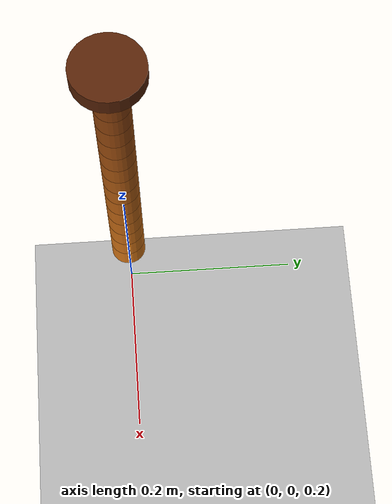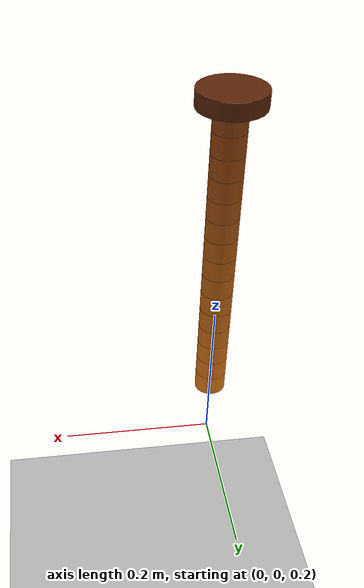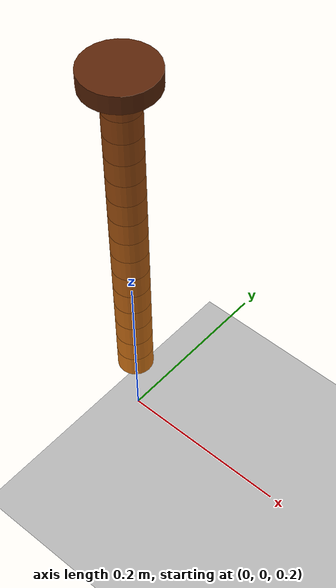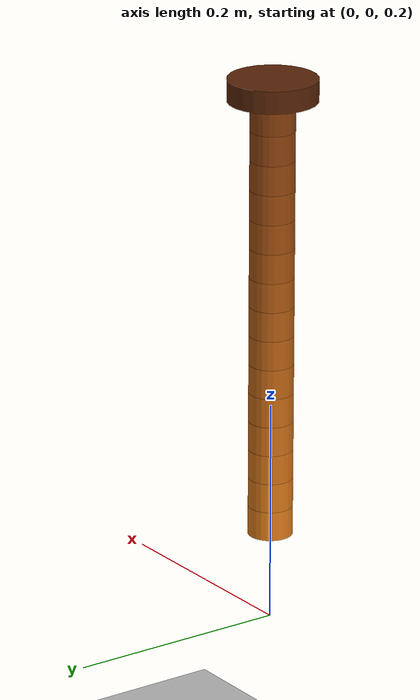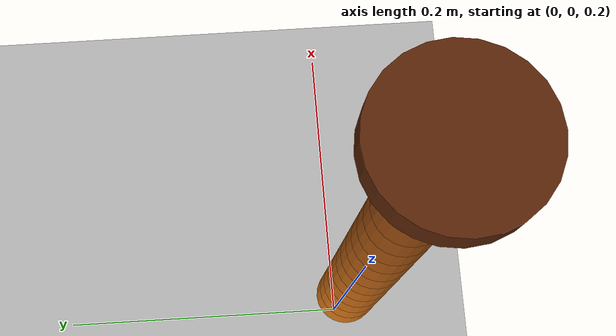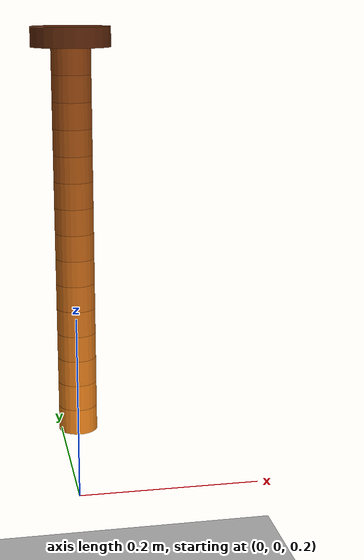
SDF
<?xml version="1.0" encoding="UTF-8"?>
<sdf version="1.9">
  <world name="continuum_arm_cosserat_test">
    <physics type="ode">
      <max_step_size>0.001</max_step_size>
      <real_time_factor>1.0</real_time_factor>
      <real_time_update_rate>1000</real_time_update_rate>
    </physics>
    <plugin name="gz::sim::systems::Physics" filename="gz-sim-physics-system"/>
    <plugin name="gz::sim::systems::UserCommands" filename="gz-sim-user-commands-system"/>
    <plugin name="gz::sim::systems::SceneBroadcaster" filename="gz-sim-scene-broadcaster-system"/>
    <!-- Base-reaction-wrench (Task 3 eval suite) + tip-payload injection -
         see continuum_arm_test.sdf's identical block for the rationale. -->
    <plugin name="gz::sim::systems::ForceTorque" filename="gz-sim-forcetorque-system"/>
    <plugin name="gz::sim::systems::Sensors" filename="gz-sim-sensors-system">
      <render_engine>ogre2</render_engine>
    </plugin>
    <plugin name="gz::sim::systems::ApplyLinkWrench" filename="gz-sim-apply-link-wrench-system"/>
    <plugin filename="gz-sim-pose-publisher-system" name="gz::sim::systems::PosePublisher">
      <publish_link_pose>true</publish_link_pose>
      <publish_model_pose>true</publish_model_pose>
      <use_pose_vector_msg>true</use_pose_vector_msg>
      <static_publisher>false</static_publisher>
      <update_frequency>60</update_frequency>
    </plugin>

    <gravity>0 0 -9.8</gravity>

    <light name="sun" type="directional">
      <pose>0 0 10 0 0 0</pose>
      <direction>0.3 0.3 -0.9</direction>
      <diffuse>0.9 0.9 0.9 1</diffuse>
    </light>

    <model name="ground_plane">
      <static>true</static>
      <link name="link">
        <collision name="collision">
          <geometry><plane><normal>0 0 1</normal><size>10 10</size></plane></geometry>
        </collision>
        <visual name="visual">
          <geometry><plane><normal>0 0 1</normal><size>10 10</size></plane></geometry>
          <material><ambient>0.7 0.7 0.7 1</ambient></material>
        </visual>
      </link>
    </model>

    <model name="continuum_arm_cosserat_test_rig">
      <pose>0 0 0.7 0 0 0</pose>
      <static>false</static>
      <link name="mount_link">
        <inertial>
          <mass>0.01</mass>
          <inertia><ixx>1e-6</ixx><iyy>1e-6</iyy><izz>1e-6</izz></inertia>
        </inertial>
      </link>
      <joint name="world_to_mount_joint" type="fixed">
        <parent>world</parent>
        <child>mount_link</child>
      </joint>
      <include merge='true'>
        <uri>model://continuum_arm_cosserat</uri>
      </include>
      <joint name="world_mount_joint" type="fixed">
        <parent>mount_link</parent>
        <child>continuum_arm_cosserat/base_cyl</child>
        <sensor name="arm_base_ft_sensor" type="force_torque">
          <update_rate>100</update_rate>
          <force_torque>
            <frame>parent</frame>
            <measure_direction>child_to_parent</measure_direction>
          </force_torque>
        </sensor>
      </joint>
    </model>
  </world>
</sdf>

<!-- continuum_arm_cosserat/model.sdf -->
<sdf version='1.9'>
  <model name='continuum_arm_cosserat'>
    <self_collide>false</self_collide>
    <static>false</static>

    <link name="continuum_arm_cosserat/base_cyl">
      <pose>0 0 -0.01000 0 0 0</pose>
      <gravity>true</gravity>
      <self_collide>false</self_collide>
      <velocity_decay/>
      <inertial>
        <mass>0.078431</mass>
        <inertia>
          <ixx>3.398693e-05</ixx>
          <iyy>3.398693e-05</iyy>
          <izz>6.274510e-05</izz>
        </inertia>
      </inertial>
      <collision name="continuum_arm_cosserat/base_cyl_collision">
        <geometry>
          <cylinder><radius>0.04</radius><length>0.02</length></cylinder>
        </geometry>
      </collision>
      <visual name="continuum_arm_cosserat/base_cyl_visual">
        <geometry>
          <cylinder><radius>0.04</radius><length>0.02</length></cylinder>
        </geometry>
        <material>
          <ambient>0.20 0.08 0.02 1</ambient>
          <diffuse>0.35 0.14 0.03 1</diffuse>
          <specular>0.2 0.2 0.2 1</specular>
        </material>
      </visual>
    </link>
    <!-- Segment 1/15 -->
    <link name="continuum_arm_cosserat/segment_1">
      <pose>0 0 -0.03333 0 0 0</pose>
      <gravity>true</gravity>
      <self_collide>false</self_collide>
      <velocity_decay/>
      <inertial>
        <mass>0.011438</mass>
        <inertia>
          <ixx>2.464975e-06</ixx>
          <iyy>2.464975e-06</iyy>
          <izz>3.574346e-06</izz>
        </inertia>
      </inertial>
      <collision name="continuum_arm_cosserat/segment_1_collision">
        <geometry>
          <cylinder><radius>0.02</radius><length>0.02666666666666667</length></cylinder>
        </geometry>
      </collision>
      <visual name="continuum_arm_cosserat/segment_1_visual">
        <geometry>
          <cylinder><radius>0.02</radius><length>0.02666666666666667</length></cylinder>
        </geometry>
        <material>
          <ambient>0.350 0.150 0.020 1</ambient>
          <diffuse>0.550 0.250 0.050 1</diffuse>
          <specular>0.2 0.2 0.2 1</specular>
        </material>
      </visual>
    </link>
    <joint name="continuum_arm_cosserat/joint_1" type="universal">
      <parent>continuum_arm_cosserat/base_cyl</parent>
      <child>continuum_arm_cosserat/segment_1</child>
      <pose>0 0 0.01333 0 0 0</pose>
      <axis>
        <xyz>1 0 0</xyz>
        <limit>
          <lower>-0.8</lower>
          <upper>0.8</upper>
          <effort>0.24</effort>
          <velocity>5.0</velocity>
        </limit>
        <dynamics>
          <damping>0.08</damping>
        </dynamics>
      </axis>
      <axis2>
        <xyz>0 1 0</xyz>
        <limit>
          <lower>-0.8</lower>
          <upper>0.8</upper>
          <effort>0.24</effort>
          <velocity>5.0</velocity>
        </limit>
        <dynamics>
          <damping>0.08</damping>
        </dynamics>
      </axis2>
    </joint>
    <!-- Segment 2/15 -->
    <link name="continuum_arm_cosserat/segment_2">
      <pose>0 0 -0.06000 0 0 0</pose>
      <gravity>true</gravity>
      <self_collide>false</self_collide>
      <velocity_decay/>
      <inertial>
        <mass>0.011438</mass>
        <inertia>
          <ixx>2.464975e-06</ixx>
          <iyy>2.464975e-06</iyy>
          <izz>3.574346e-06</izz>
        </inertia>
      </inertial>
      <collision name="continuum_arm_cosserat/segment_2_collision">
        <geometry>
          <cylinder><radius>0.02</radius><length>0.02666666666666667</length></cylinder>
        </geometry>
      </collision>
      <visual name="continuum_arm_cosserat/segment_2_visual">
        <geometry>
          <cylinder><radius>0.02</radius><length>0.02666666666666667</length></cylinder>
        </geometry>
        <material>
          <ambient>0.382 0.164 0.021 1</ambient>
          <diffuse>0.575 0.268 0.054 1</diffuse>
          <specular>0.2 0.2 0.2 1</specular>
        </material>
      </visual>
    </link>
    <joint name="continuum_arm_cosserat/joint_2" type="universal">
      <parent>continuum_arm_cosserat/segment_1</parent>
      <child>continuum_arm_cosserat/segment_2</child>
      <pose>0 0 0.01333 0 0 0</pose>
      <axis>
        <xyz>1 0 0</xyz>
        <limit>
          <lower>-0.8</lower>
          <upper>0.8</upper>
          <effort>0.24</effort>
          <velocity>5.0</velocity>
        </limit>
        <dynamics>
          <damping>0.08</damping>
        </dynamics>
      </axis>
      <axis2>
        <xyz>0 1 0</xyz>
        <limit>
          <lower>-0.8</lower>
          <upper>0.8</upper>
          <effort>0.24</effort>
          <velocity>5.0</velocity>
        </limit>
        <dynamics>
          <damping>0.08</damping>
        </dynamics>
      </axis2>
    </joint>
    <!-- Segment 3/15 -->
    <link name="continuum_arm_cosserat/segment_3">
      <pose>0 0 -0.08667 0 0 0</pose>
      <gravity>true</gravity>
      <self_collide>false</self_collide>
      <velocity_decay/>
      <inertial>
        <mass>0.011438</mass>
        <inertia>
          <ixx>2.464975e-06</ixx>
          <iyy>2.464975e-06</iyy>
          <izz>3.574346e-06</izz>
        </inertia>
      </inertial>
      <collision name="continuum_arm_cosserat/segment_3_collision">
        <geometry>
          <cylinder><radius>0.02</radius><length>0.02666666666666667</length></cylinder>
        </geometry>
      </collision>
      <visual name="continuum_arm_cosserat/segment_3_visual">
        <geometry>
          <cylinder><radius>0.02</radius><length>0.02666666666666667</length></cylinder>
        </geometry>
        <material>
          <ambient>0.414 0.179 0.023 1</ambient>
          <diffuse>0.600 0.286 0.057 1</diffuse>
          <specular>0.2 0.2 0.2 1</specular>
        </material>
      </visual>
    </link>
    <joint name="continuum_arm_cosserat/joint_3" type="universal">
      <parent>continuum_arm_cosserat/segment_2</parent>
      <child>continuum_arm_cosserat/segment_3</child>
      <pose>0 0 0.01333 0 0 0</pose>
      <axis>
        <xyz>1 0 0</xyz>
        <limit>
          <lower>-0.8</lower>
          <upper>0.8</upper>
          <effort>0.24</effort>
          <velocity>5.0</velocity>
        </limit>
        <dynamics>
          <damping>0.08</damping>
        </dynamics>
      </axis>
      <axis2>
        <xyz>0 1 0</xyz>
        <limit>
          <lower>-0.8</lower>
          <upper>0.8</upper>
          <effort>0.24</effort>
          <velocity>5.0</velocity>
        </limit>
        <dynamics>
          <damping>0.08</damping>
        </dynamics>
      </axis2>
    </joint>
    <!-- Segment 4/15 -->
    <link name="continuum_arm_cosserat/segment_4">
      <pose>0 0 -0.11333 0 0 0</pose>
      <gravity>true</gravity>
      <self_collide>false</self_collide>
      <velocity_decay/>
      <inertial>
        <mass>0.011438</mass>
        <inertia>
          <ixx>2.464975e-06</ixx>
          <iyy>2.464975e-06</iyy>
          <izz>3.574346e-06</izz>
        </inertia>
      </inertial>
      <collision name="continuum_arm_cosserat/segment_4_collision">
        <geometry>
          <cylinder><radius>0.02</radius><length>0.02666666666666667</length></cylinder>
        </geometry>
      </collision>
      <visual name="continuum_arm_cosserat/segment_4_visual">
        <geometry>
          <cylinder><radius>0.02</radius><length>0.02666666666666667</length></cylinder>
        </geometry>
        <material>
          <ambient>0.446 0.193 0.024 1</ambient>
          <diffuse>0.625 0.304 0.061 1</diffuse>
          <specular>0.2 0.2 0.2 1</specular>
        </material>
      </visual>
    </link>
    <joint name="continuum_arm_cosserat/joint_4" type="universal">
      <parent>continuum_arm_cosserat/segment_3</parent>
      <child>continuum_arm_cosserat/segment_4</child>
      <pose>0 0 0.01333 0 0 0</pose>
      <axis>
        <xyz>1 0 0</xyz>
        <limit>
          <lower>-0.8</lower>
          <upper>0.8</upper>
          <effort>0.24</effort>
          <velocity>5.0</velocity>
        </limit>
        <dynamics>
          <damping>0.08</damping>
        </dynamics>
      </axis>
      <axis2>
        <xyz>0 1 0</xyz>
        <limit>
          <lower>-0.8</lower>
          <upper>0.8</upper>
          <effort>0.24</effort>
          <velocity>5.0</velocity>
        </limit>
        <dynamics>
          <damping>0.08</damping>
        </dynamics>
      </axis2>
    </joint>
    <!-- Segment 5/15 -->
    <link name="continuum_arm_cosserat/segment_5">
      <pose>0 0 -0.14000 0 0 0</pose>
      <gravity>true</gravity>
      <self_collide>false</self_collide>
      <velocity_decay/>
      <inertial>
        <mass>0.011438</mass>
        <inertia>
          <ixx>2.464975e-06</ixx>
          <iyy>2.464975e-06</iyy>
          <izz>3.574346e-06</izz>
        </inertia>
      </inertial>
      <collision name="continuum_arm_cosserat/segment_5_collision">
        <geometry>
          <cylinder><radius>0.02</radius><length>0.02666666666666667</length></cylinder>
        </geometry>
      </collision>
      <visual name="continuum_arm_cosserat/segment_5_visual">
        <geometry>
          <cylinder><radius>0.02</radius><length>0.02666666666666667</length></cylinder>
        </geometry>
        <material>
          <ambient>0.479 0.207 0.026 1</ambient>
          <diffuse>0.650 0.321 0.064 1</diffuse>
          <specular>0.2 0.2 0.2 1</specular>
        </material>
      </visual>
    </link>
    <joint name="continuum_arm_cosserat/joint_5" type="universal">
      <parent>continuum_arm_cosserat/segment_4</parent>
      <child>continuum_arm_cosserat/segment_5</child>
      <pose>0 0 0.01333 0 0 0</pose>
      <axis>
        <xyz>1 0 0</xyz>
        <limit>
          <lower>-0.8</lower>
          <upper>0.8</upper>
          <effort>0.24</effort>
          <velocity>5.0</velocity>
        </limit>
        <dynamics>
          <damping>0.08</damping>
        </dynamics>
      </axis>
      <axis2>
        <xyz>0 1 0</xyz>
        <limit>
          <lower>-0.8</lower>
          <upper>0.8</upper>
          <effort>0.24</effort>
          <velocity>5.0</velocity>
        </limit>
        <dynamics>
          <damping>0.08</damping>
        </dynamics>
      </axis2>
    </joint>
    <!-- Segment 6/15 -->
    <link name="continuum_arm_cosserat/segment_6">
      <pose>0 0 -0.16667 0 0 0</pose>
      <gravity>true</gravity>
      <self_collide>false</self_collide>
      <velocity_decay/>
      <inertial>
        <mass>0.011438</mass>
        <inertia>
          <ixx>2.464975e-06</ixx>
          <iyy>2.464975e-06</iyy>
          <izz>3.574346e-06</izz>
        </inertia>
      </inertial>
      <collision name="continuum_arm_cosserat/segment_6_collision">
        <geometry>
          <cylinder><radius>0.02</radius><length>0.02666666666666667</length></cylinder>
        </geometry>
      </collision>
      <visual name="continuum_arm_cosserat/segment_6_visual">
        <geometry>
          <cylinder><radius>0.02</radius><length>0.02666666666666667</length></cylinder>
        </geometry>
        <material>
          <ambient>0.511 0.221 0.027 1</ambient>
          <diffuse>0.675 0.339 0.068 1</diffuse>
          <specular>0.2 0.2 0.2 1</specular>
        </material>
      </visual>
    </link>
    <joint name="continuum_arm_cosserat/joint_6" type="universal">
      <parent>continuum_arm_cosserat/segment_5</parent>
      <child>continuum_arm_cosserat/segment_6</child>
      <pose>0 0 0.01333 0 0 0</pose>
      <axis>
        <xyz>1 0 0</xyz>
        <limit>
          <lower>-0.8</lower>
          <upper>0.8</upper>
          <effort>0.24</effort>
          <velocity>5.0</velocity>
        </limit>
        <dynamics>
          <damping>0.08</damping>
        </dynamics>
      </axis>
      <axis2>
        <xyz>0 1 0</xyz>
        <limit>
          <lower>-0.8</lower>
          <upper>0.8</upper>
          <effort>0.24</effort>
          <velocity>5.0</velocity>
        </limit>
        <dynamics>
          <damping>0.08</damping>
        </dynamics>
      </axis2>
    </joint>
    <!-- Segment 7/15 -->
    <link name="continuum_arm_cosserat/segment_7">
      <pose>0 0 -0.19333 0 0 0</pose>
      <gravity>true</gravity>
      <self_collide>false</self_collide>
      <velocity_decay/>
      <inertial>
        <mass>0.011438</mass>
        <inertia>
          <ixx>2.464975e-06</ixx>
          <iyy>2.464975e-06</iyy>
          <izz>3.574346e-06</izz>
        </inertia>
      </inertial>
      <collision name="continuum_arm_cosserat/segment_7_collision">
        <geometry>
          <cylinder><radius>0.02</radius><length>0.02666666666666667</length></cylinder>
        </geometry>
      </collision>
      <visual name="continuum_arm_cosserat/segment_7_visual">
        <geometry>
          <cylinder><radius>0.02</radius><length>0.02666666666666667</length></cylinder>
        </geometry>
        <material>
          <ambient>0.543 0.236 0.029 1</ambient>
          <diffuse>0.700 0.357 0.071 1</diffuse>
          <specular>0.2 0.2 0.2 1</specular>
        </material>
      </visual>
    </link>
    <joint name="continuum_arm_cosserat/joint_7" type="universal">
      <parent>continuum_arm_cosserat/segment_6</parent>
      <child>continuum_arm_cosserat/segment_7</child>
      <pose>0 0 0.01333 0 0 0</pose>
      <axis>
        <xyz>1 0 0</xyz>
        <limit>
          <lower>-0.8</lower>
          <upper>0.8</upper>
          <effort>0.24</effort>
          <velocity>5.0</velocity>
        </limit>
        <dynamics>
          <damping>0.08</damping>
        </dynamics>
      </axis>
      <axis2>
        <xyz>0 1 0</xyz>
        <limit>
          <lower>-0.8</lower>
          <upper>0.8</upper>
          <effort>0.24</effort>
          <velocity>5.0</velocity>
        </limit>
        <dynamics>
          <damping>0.08</damping>
        </dynamics>
      </axis2>
    </joint>
    <!-- Segment 8/15 -->
    <link name="continuum_arm_cosserat/segment_8">
      <pose>0 0 -0.22000 0 0 0</pose>
      <gravity>true</gravity>
      <self_collide>false</self_collide>
      <velocity_decay/>
      <inertial>
        <mass>0.011438</mass>
        <inertia>
          <ixx>2.464975e-06</ixx>
          <iyy>2.464975e-06</iyy>
          <izz>3.574346e-06</izz>
        </inertia>
      </inertial>
      <collision name="continuum_arm_cosserat/segment_8_collision">
        <geometry>
          <cylinder><radius>0.02</radius><length>0.02666666666666667</length></cylinder>
        </geometry>
      </collision>
      <visual name="continuum_arm_cosserat/segment_8_visual">
        <geometry>
          <cylinder><radius>0.02</radius><length>0.02666666666666667</length></cylinder>
        </geometry>
        <material>
          <ambient>0.575 0.250 0.030 1</ambient>
          <diffuse>0.725 0.375 0.075 1</diffuse>
          <specular>0.2 0.2 0.2 1</specular>
        </material>
      </visual>
    </link>
    <joint name="continuum_arm_cosserat/joint_8" type="universal">
      <parent>continuum_arm_cosserat/segment_7</parent>
      <child>continuum_arm_cosserat/segment_8</child>
      <pose>0 0 0.01333 0 0 0</pose>
      <axis>
        <xyz>1 0 0</xyz>
        <limit>
          <lower>-0.8</lower>
          <upper>0.8</upper>
          <effort>0.24</effort>
          <velocity>5.0</velocity>
        </limit>
        <dynamics>
          <damping>0.08</damping>
        </dynamics>
      </axis>
      <axis2>
        <xyz>0 1 0</xyz>
        <limit>
          <lower>-0.8</lower>
          <upper>0.8</upper>
          <effort>0.24</effort>
          <velocity>5.0</velocity>
        </limit>
        <dynamics>
          <damping>0.08</damping>
        </dynamics>
      </axis2>
    </joint>
    <!-- Segment 9/15 -->
    <link name="continuum_arm_cosserat/segment_9">
      <pose>0 0 -0.24667 0 0 0</pose>
      <gravity>true</gravity>
      <self_collide>false</self_collide>
      <velocity_decay/>
      <inertial>
        <mass>0.011438</mass>
        <inertia>
          <ixx>2.464975e-06</ixx>
          <iyy>2.464975e-06</iyy>
          <izz>3.574346e-06</izz>
        </inertia>
      </inertial>
      <collision name="continuum_arm_cosserat/segment_9_collision">
        <geometry>
          <cylinder><radius>0.02</radius><length>0.02666666666666667</length></cylinder>
        </geometry>
      </collision>
      <visual name="continuum_arm_cosserat/segment_9_visual">
        <geometry>
          <cylinder><radius>0.02</radius><length>0.02666666666666667</length></cylinder>
        </geometry>
        <material>
          <ambient>0.607 0.264 0.031 1</ambient>
          <diffuse>0.750 0.393 0.079 1</diffuse>
          <specular>0.2 0.2 0.2 1</specular>
        </material>
      </visual>
    </link>
    <joint name="continuum_arm_cosserat/joint_9" type="universal">
      <parent>continuum_arm_cosserat/segment_8</parent>
      <child>continuum_arm_cosserat/segment_9</child>
      <pose>0 0 0.01333 0 0 0</pose>
      <axis>
        <xyz>1 0 0</xyz>
        <limit>
          <lower>-0.8</lower>
          <upper>0.8</upper>
          <effort>0.24</effort>
          <velocity>5.0</velocity>
        </limit>
        <dynamics>
          <damping>0.08</damping>
        </dynamics>
      </axis>
      <axis2>
        <xyz>0 1 0</xyz>
        <limit>
          <lower>-0.8</lower>
          <upper>0.8</upper>
          <effort>0.24</effort>
          <velocity>5.0</velocity>
        </limit>
        <dynamics>
          <damping>0.08</damping>
        </dynamics>
      </axis2>
    </joint>
    <!-- Segment 10/15 -->
    <link name="continuum_arm_cosserat/segment_10">
      <pose>0 0 -0.27333 0 0 0</pose>
      <gravity>true</gravity>
      <self_collide>false</self_collide>
      <velocity_decay/>
      <inertial>
        <mass>0.011438</mass>
        <inertia>
          <ixx>2.464975e-06</ixx>
          <iyy>2.464975e-06</iyy>
          <izz>3.574346e-06</izz>
        </inertia>
      </inertial>
      <collision name="continuum_arm_cosserat/segment_10_collision">
        <geometry>
          <cylinder><radius>0.02</radius><length>0.02666666666666667</length></cylinder>
        </geometry>
      </collision>
      <visual name="continuum_arm_cosserat/segment_10_visual">
        <geometry>
          <cylinder><radius>0.02</radius><length>0.02666666666666667</length></cylinder>
        </geometry>
        <material>
          <ambient>0.639 0.279 0.033 1</ambient>
          <diffuse>0.775 0.411 0.082 1</diffuse>
          <specular>0.2 0.2 0.2 1</specular>
        </material>
      </visual>
    </link>
    <joint name="continuum_arm_cosserat/joint_10" type="universal">
      <parent>continuum_arm_cosserat/segment_9</parent>
      <child>continuum_arm_cosserat/segment_10</child>
      <pose>0 0 0.01333 0 0 0</pose>
      <axis>
        <xyz>1 0 0</xyz>
        <limit>
          <lower>-0.8</lower>
          <upper>0.8</upper>
          <effort>0.24</effort>
          <velocity>5.0</velocity>
        </limit>
        <dynamics>
          <damping>0.08</damping>
        </dynamics>
      </axis>
      <axis2>
        <xyz>0 1 0</xyz>
        <limit>
          <lower>-0.8</lower>
          <upper>0.8</upper>
          <effort>0.24</effort>
          <velocity>5.0</velocity>
        </limit>
        <dynamics>
          <damping>0.08</damping>
        </dynamics>
      </axis2>
    </joint>
    <!-- Segment 11/15 -->
    <link name="continuum_arm_cosserat/segment_11">
      <pose>0 0 -0.30000 0 0 0</pose>
      <gravity>true</gravity>
      <self_collide>false</self_collide>
      <velocity_decay/>
      <inertial>
        <mass>0.011438</mass>
        <inertia>
          <ixx>2.464975e-06</ixx>
          <iyy>2.464975e-06</iyy>
          <izz>3.574346e-06</izz>
        </inertia>
      </inertial>
      <collision name="continuum_arm_cosserat/segment_11_collision">
        <geometry>
          <cylinder><radius>0.02</radius><length>0.02666666666666667</length></cylinder>
        </geometry>
      </collision>
      <visual name="continuum_arm_cosserat/segment_11_visual">
        <geometry>
          <cylinder><radius>0.02</radius><length>0.02666666666666667</length></cylinder>
        </geometry>
        <material>
          <ambient>0.671 0.293 0.034 1</ambient>
          <diffuse>0.800 0.429 0.086 1</diffuse>
          <specular>0.2 0.2 0.2 1</specular>
        </material>
      </visual>
    </link>
    <joint name="continuum_arm_cosserat/joint_11" type="universal">
      <parent>continuum_arm_cosserat/segment_10</parent>
      <child>continuum_arm_cosserat/segment_11</child>
      <pose>0 0 0.01333 0 0 0</pose>
      <axis>
        <xyz>1 0 0</xyz>
        <limit>
          <lower>-0.8</lower>
          <upper>0.8</upper>
          <effort>0.24</effort>
          <velocity>5.0</velocity>
        </limit>
        <dynamics>
          <damping>0.08</damping>
        </dynamics>
      </axis>
      <axis2>
        <xyz>0 1 0</xyz>
        <limit>
          <lower>-0.8</lower>
          <upper>0.8</upper>
          <effort>0.24</effort>
          <velocity>5.0</velocity>
        </limit>
        <dynamics>
          <damping>0.08</damping>
        </dynamics>
      </axis2>
    </joint>
    <!-- Segment 12/15 -->
    <link name="continuum_arm_cosserat/segment_12">
      <pose>0 0 -0.32667 0 0 0</pose>
      <gravity>true</gravity>
      <self_collide>false</self_collide>
      <velocity_decay/>
      <inertial>
        <mass>0.011438</mass>
        <inertia>
          <ixx>2.464975e-06</ixx>
          <iyy>2.464975e-06</iyy>
          <izz>3.574346e-06</izz>
        </inertia>
      </inertial>
      <collision name="continuum_arm_cosserat/segment_12_collision">
        <geometry>
          <cylinder><radius>0.02</radius><length>0.02666666666666667</length></cylinder>
        </geometry>
      </collision>
      <visual name="continuum_arm_cosserat/segment_12_visual">
        <geometry>
          <cylinder><radius>0.02</radius><length>0.02666666666666667</length></cylinder>
        </geometry>
        <material>
          <ambient>0.704 0.307 0.036 1</ambient>
          <diffuse>0.825 0.446 0.089 1</diffuse>
          <specular>0.2 0.2 0.2 1</specular>
        </material>
      </visual>
    </link>
    <joint name="continuum_arm_cosserat/joint_12" type="universal">
      <parent>continuum_arm_cosserat/segment_11</parent>
      <child>continuum_arm_cosserat/segment_12</child>
      <pose>0 0 0.01333 0 0 0</pose>
      <axis>
        <xyz>1 0 0</xyz>
        <limit>
          <lower>-0.8</lower>
          <upper>0.8</upper>
          <effort>0.24</effort>
          <velocity>5.0</velocity>
        </limit>
        <dynamics>
          <damping>0.08</damping>
        </dynamics>
      </axis>
      <axis2>
        <xyz>0 1 0</xyz>
        <limit>
          <lower>-0.8</lower>
          <upper>0.8</upper>
          <effort>0.24</effort>
          <velocity>5.0</velocity>
        </limit>
        <dynamics>
          <damping>0.08</damping>
        </dynamics>
      </axis2>
    </joint>
    <!-- Segment 13/15 -->
    <link name="continuum_arm_cosserat/segment_13">
      <pose>0 0 -0.35333 0 0 0</pose>
      <gravity>true</gravity>
      <self_collide>false</self_collide>
      <velocity_decay/>
      <inertial>
        <mass>0.011438</mass>
        <inertia>
          <ixx>2.464975e-06</ixx>
          <iyy>2.464975e-06</iyy>
          <izz>3.574346e-06</izz>
        </inertia>
      </inertial>
      <collision name="continuum_arm_cosserat/segment_13_collision">
        <geometry>
          <cylinder><radius>0.02</radius><length>0.02666666666666667</length></cylinder>
        </geometry>
      </collision>
      <visual name="continuum_arm_cosserat/segment_13_visual">
        <geometry>
          <cylinder><radius>0.02</radius><length>0.02666666666666667</length></cylinder>
        </geometry>
        <material>
          <ambient>0.736 0.321 0.037 1</ambient>
          <diffuse>0.850 0.464 0.093 1</diffuse>
          <specular>0.2 0.2 0.2 1</specular>
        </material>
      </visual>
    </link>
    <joint name="continuum_arm_cosserat/joint_13" type="universal">
      <parent>continuum_arm_cosserat/segment_12</parent>
      <child>continuum_arm_cosserat/segment_13</child>
      <pose>0 0 0.01333 0 0 0</pose>
      <axis>
        <xyz>1 0 0</xyz>
        <limit>
          <lower>-0.8</lower>
          <upper>0.8</upper>
          <effort>0.24</effort>
          <velocity>5.0</velocity>
        </limit>
        <dynamics>
          <damping>0.08</damping>
        </dynamics>
      </axis>
      <axis2>
        <xyz>0 1 0</xyz>
        <limit>
          <lower>-0.8</lower>
          <upper>0.8</upper>
          <effort>0.24</effort>
          <velocity>5.0</velocity>
        </limit>
        <dynamics>
          <damping>0.08</damping>
        </dynamics>
      </axis2>
    </joint>
    <!-- Segment 14/15 -->
    <link name="continuum_arm_cosserat/segment_14">
      <pose>0 0 -0.38000 0 0 0</pose>
      <gravity>true</gravity>
      <self_collide>false</self_collide>
      <velocity_decay/>
      <inertial>
        <mass>0.011438</mass>
        <inertia>
          <ixx>2.464975e-06</ixx>
          <iyy>2.464975e-06</iyy>
          <izz>3.574346e-06</izz>
        </inertia>
      </inertial>
      <collision name="continuum_arm_cosserat/segment_14_collision">
        <geometry>
          <cylinder><radius>0.02</radius><length>0.02666666666666667</length></cylinder>
        </geometry>
      </collision>
      <visual name="continuum_arm_cosserat/segment_14_visual">
        <geometry>
          <cylinder><radius>0.02</radius><length>0.02666666666666667</length></cylinder>
        </geometry>
        <material>
          <ambient>0.768 0.336 0.039 1</ambient>
          <diffuse>0.875 0.482 0.096 1</diffuse>
          <specular>0.2 0.2 0.2 1</specular>
        </material>
      </visual>
    </link>
    <joint name="continuum_arm_cosserat/joint_14" type="universal">
      <parent>continuum_arm_cosserat/segment_13</parent>
      <child>continuum_arm_cosserat/segment_14</child>
      <pose>0 0 0.01333 0 0 0</pose>
      <axis>
        <xyz>1 0 0</xyz>
        <limit>
          <lower>-0.8</lower>
          <upper>0.8</upper>
          <effort>0.24</effort>
          <velocity>5.0</velocity>
        </limit>
        <dynamics>
          <damping>0.08</damping>
        </dynamics>
      </axis>
      <axis2>
        <xyz>0 1 0</xyz>
        <limit>
          <lower>-0.8</lower>
          <upper>0.8</upper>
          <effort>0.24</effort>
          <velocity>5.0</velocity>
        </limit>
        <dynamics>
          <damping>0.08</damping>
        </dynamics>
      </axis2>
    </joint>
    <!-- Segment 15/15 -->
    <link name="continuum_arm_cosserat/segment_15">
      <pose>0 0 -0.40667 0 0 0</pose>
      <gravity>true</gravity>
      <self_collide>false</self_collide>
      <velocity_decay/>
      <inertial>
        <mass>0.011438</mass>
        <inertia>
          <ixx>2.464975e-06</ixx>
          <iyy>2.464975e-06</iyy>
          <izz>3.574346e-06</izz>
        </inertia>
      </inertial>
      <collision name="continuum_arm_cosserat/segment_15_collision">
        <geometry>
          <cylinder><radius>0.02</radius><length>0.02666666666666667</length></cylinder>
        </geometry>
      </collision>
      <visual name="continuum_arm_cosserat/segment_15_visual">
        <geometry>
          <cylinder><radius>0.02</radius><length>0.02666666666666667</length></cylinder>
        </geometry>
        <material>
          <ambient>0.800 0.350 0.040 1</ambient>
          <diffuse>0.900 0.500 0.100 1</diffuse>
          <specular>0.2 0.2 0.2 1</specular>
        </material>
      </visual>
    </link>
    <joint name="continuum_arm_cosserat/joint_15" type="universal">
      <parent>continuum_arm_cosserat/segment_14</parent>
      <child>continuum_arm_cosserat/segment_15</child>
      <pose>0 0 0.01333 0 0 0</pose>
      <axis>
        <xyz>1 0 0</xyz>
        <limit>
          <lower>-0.8</lower>
          <upper>0.8</upper>
          <effort>0.24</effort>
          <velocity>5.0</velocity>
        </limit>
        <dynamics>
          <damping>0.08</damping>
        </dynamics>
      </axis>
      <axis2>
        <xyz>0 1 0</xyz>
        <limit>
          <lower>-0.8</lower>
          <upper>0.8</upper>
          <effort>0.24</effort>
          <velocity>5.0</velocity>
        </limit>
        <dynamics>
          <damping>0.08</damping>
        </dynamics>
      </axis2>
    </joint>

    <plugin filename="CosseratArmController" name="cosserat_arm_controller::CosseratArmController">
      <joint_name>continuum_arm_cosserat/joint_1</joint_name>
      <joint_name>continuum_arm_cosserat/joint_2</joint_name>
      <joint_name>continuum_arm_cosserat/joint_3</joint_name>
      <joint_name>continuum_arm_cosserat/joint_4</joint_name>
      <joint_name>continuum_arm_cosserat/joint_5</joint_name>
      <joint_name>continuum_arm_cosserat/joint_6</joint_name>
      <joint_name>continuum_arm_cosserat/joint_7</joint_name>
      <joint_name>continuum_arm_cosserat/joint_8</joint_name>
      <joint_name>continuum_arm_cosserat/joint_9</joint_name>
      <joint_name>continuum_arm_cosserat/joint_10</joint_name>
      <joint_name>continuum_arm_cosserat/joint_11</joint_name>
      <joint_name>continuum_arm_cosserat/joint_12</joint_name>
      <joint_name>continuum_arm_cosserat/joint_13</joint_name>
      <joint_name>continuum_arm_cosserat/joint_14</joint_name>
      <joint_name>continuum_arm_cosserat/joint_15</joint_name>
      <rod_length>0.4</rod_length>
      <rod_outer_radius>0.02</rod_outer_radius>
      <rod_inner_radius>0.015</rod_inner_radius>
      <youngs_modulus>3.75e7</youngs_modulus>
      <shear_modulus>1.2e7</shear_modulus>
      <solidity_fill_factor>0.20</solidity_fill_factor>
      <rod_density>780.1713</rod_density>
      <pitch_radius>0.015</pitch_radius>
      <tendon_stiffness>3333.0</tendon_stiffness>
      <max_tension>120.0</max_tension>
      <tendon_baseline>0.0</tendon_baseline>
      <use_guided_tendons>true</use_guided_tendons>
      <position_p_gain>8.0</position_p_gain>
      <position_d_gain>0.10</position_d_gain>
      <effort_limit>1.8</effort_limit>
      <tendon_topic>/continuum_arm_cosserat/tendon_cmd</tendon_topic>
      <tip_pose_topic>/continuum_arm_cosserat/tip_pose</tip_pose_topic>
      <tip_link>continuum_arm_cosserat/segment_15</tip_link>

      <command_filter_omega>2.92</command_filter_omega>
      <max_tendon_rate_m_s>0.06</max_tendon_rate_m_s>
      <solve_rate_hz>50.0</solve_rate_hz>
    </plugin>

    <plugin filename="gz-sim-joint-state-publisher-system" name="gz::sim::systems::JointStatePublisher">
      <topic>/continuum_arm_cosserat/joint_states</topic>
      <joint_name>continuum_arm_cosserat/joint_1</joint_name>
      <joint_name>continuum_arm_cosserat/joint_2</joint_name>
      <joint_name>continuum_arm_cosserat/joint_3</joint_name>
      <joint_name>continuum_arm_cosserat/joint_4</joint_name>
      <joint_name>continuum_arm_cosserat/joint_5</joint_name>
      <joint_name>continuum_arm_cosserat/joint_6</joint_name>
      <joint_name>continuum_arm_cosserat/joint_7</joint_name>
      <joint_name>continuum_arm_cosserat/joint_8</joint_name>
      <joint_name>continuum_arm_cosserat/joint_9</joint_name>
      <joint_name>continuum_arm_cosserat/joint_10</joint_name>
      <joint_name>continuum_arm_cosserat/joint_11</joint_name>
      <joint_name>continuum_arm_cosserat/joint_12</joint_name>
      <joint_name>continuum_arm_cosserat/joint_13</joint_name>
      <joint_name>continuum_arm_cosserat/joint_14</joint_name>
      <joint_name>continuum_arm_cosserat/joint_15</joint_name>
    </plugin>

  </model>
</sdf>
